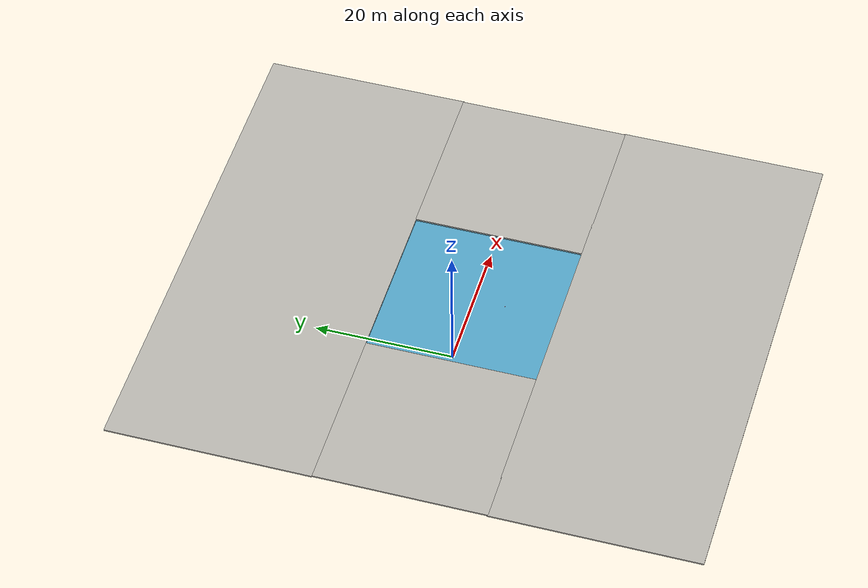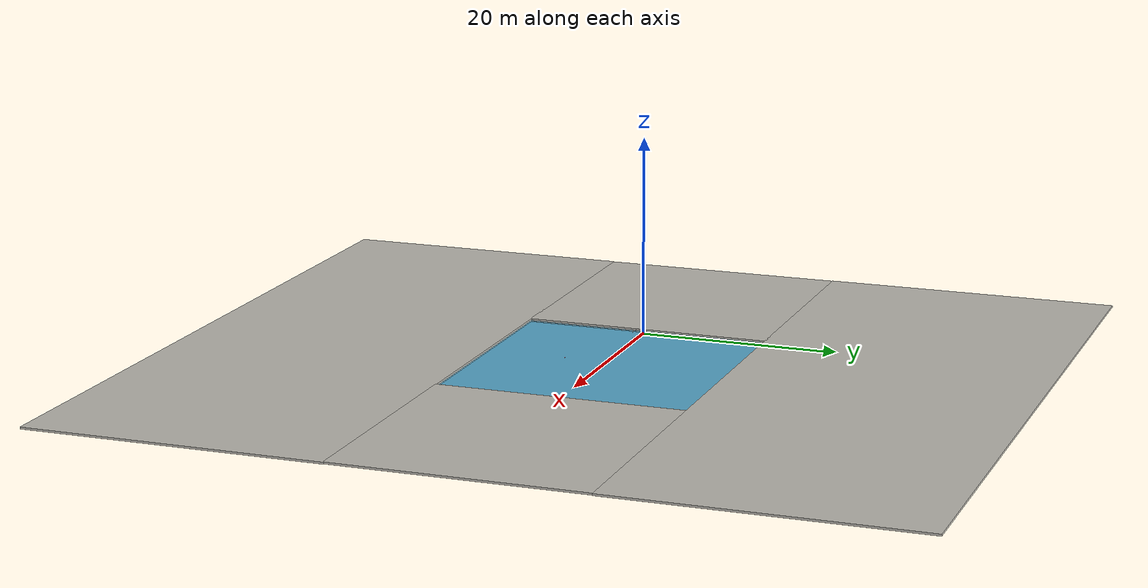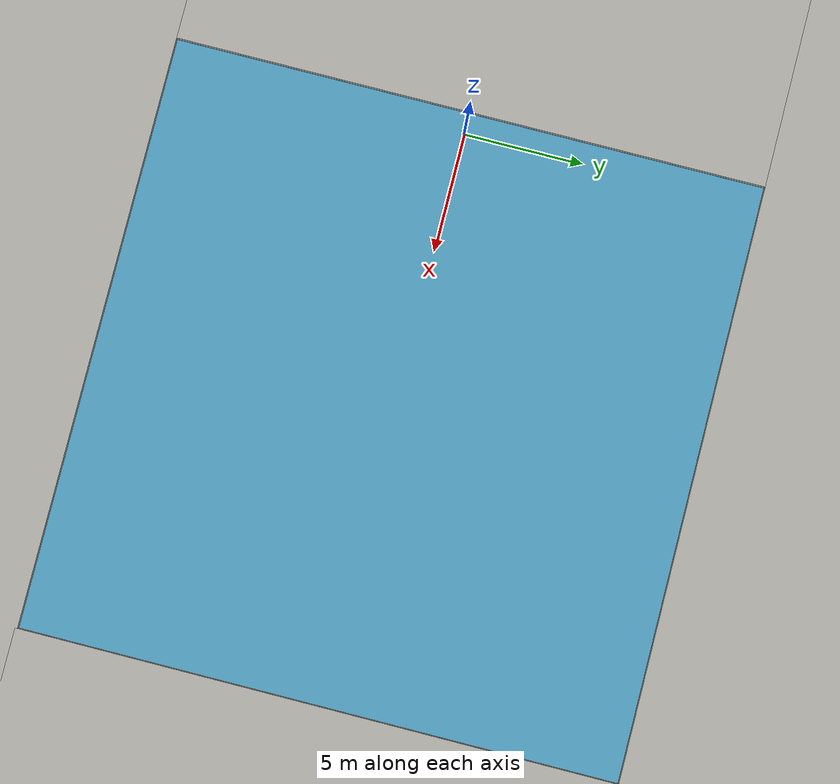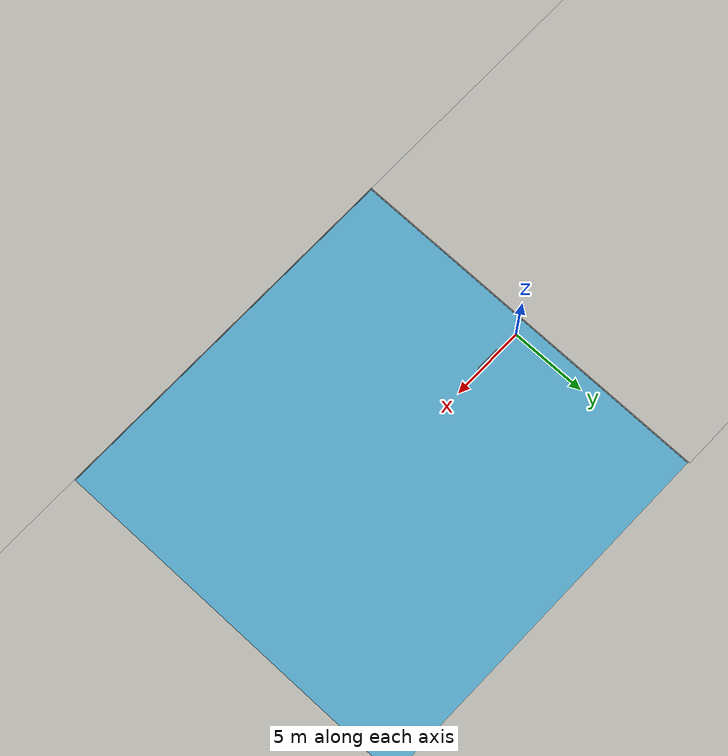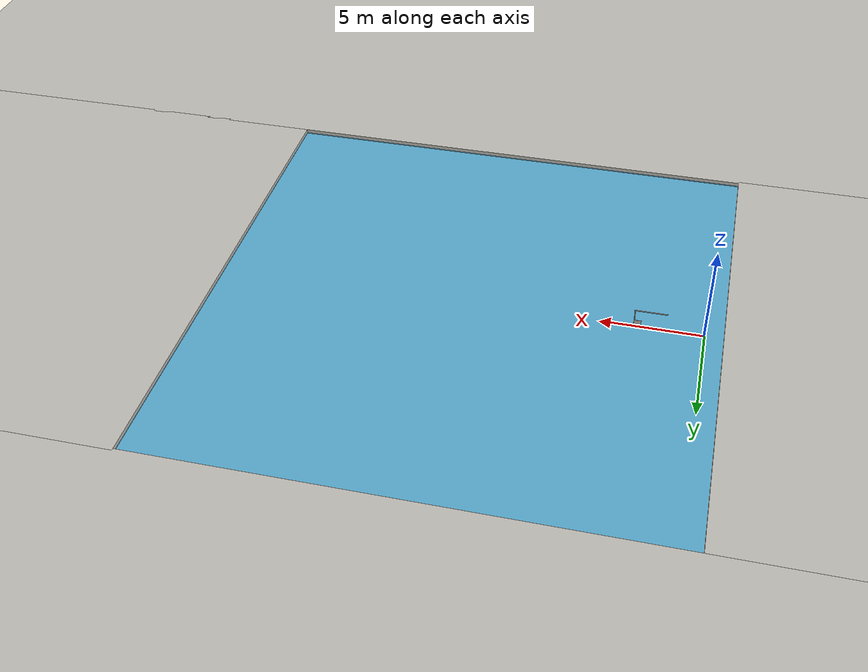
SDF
<sdf version="1.8">
 <world name="underwater_pool">
  <physics name="2ms" type="ode">
   <max_step_size>0.002</max_step_size>
   <real_time_factor>1.0</real_time_factor>
   <ode>
    <solver><type>quick</type><iters>20</iters><sor>1.3</sor></solver>
    <constraints>
     <cfm>0.0</cfm>
     <erp>0.2</erp>
     <contact_max_correcting_vel>0.1</contact_max_correcting_vel>
     <contact_surface_layer>0.001</contact_surface_layer>
    </constraints>
   </ode>
  </physics>
  <plugin filename="ignition-gazebo-physics-system" name="ignition::gazebo::systems::Physics"/>
  <plugin filename="ignition-gazebo-user-commands-system" name="ignition::gazebo::systems::UserCommands"/>
  <plugin filename="ignition-gazebo-scene-broadcaster-system" name="ignition::gazebo::systems::SceneBroadcaster"/>
  <plugin filename="ignition-gazebo-contact-system" name="ignition::gazebo::systems::Contact"/>
  <plugin filename="ignition-gazebo-apply-link-wrench-system" name="ignition::gazebo::systems::ApplyLinkWrench"/>
  <plugin filename="ignition-gazebo-buoyancy-system" name="ignition::gazebo::systems::Buoyancy">
   <graded_buoyancy>
    <default_density>1025</default_density>
    <density_change><above_depth>0</above_depth><density>1.2</density></density_change>
   </graded_buoyancy>
  </plugin>
  <plugin filename="ignition-gazebo-imu-system" name="ignition::gazebo::systems::Imu"/>
  <plugin filename="ignition-gazebo-sensors-system" name="ignition::gazebo::systems::Sensors">
   <render_engine>ogre2</render_engine>
  </plugin>
  <gravity>0 0 -9.81</gravity>
  <scene>
   <ambient>0.18 0.38 0.46 1.0</ambient>
   <background>0.02 0.18 0.28 1.0</background>
   <shadows>true</shadows>
   <grid>false</grid>
   <fog>
    <type>exp2</type>
    <color>0.03 0.30 0.38 1</color>
    <density>0.085</density>
    <start>0.6</start>
    <end>18.0</end>
   </fog>
  </scene>
  <light type="directional" name="sun_through_water">
   <cast_shadows>false</cast_shadows>
   <pose>0 0 5 0 0 0</pose>
   <direction>-0.3 0.1 -0.95</direction>
   <diffuse>0.68 0.86 0.94 1</diffuse>
   <specular>0.55 0.72 0.78 1</specular>
   <attenuation>
    <range>1000</range>
    <constant>0.9</constant>
    <linear>0.01</linear>
    <quadratic>0.001</quadratic>
   </attenuation>
  </light>
  <light type="point" name="water_column_scatter">
   <pose>11.5 0 -2.0 0 0 0</pose>
   <diffuse>0.22 0.48 0.62 1</diffuse>
   <specular>0.10 0.22 0.30 1</specular>
   <attenuation>
    <range>50</range>
    <constant>0.5</constant>
    <linear>0.03</linear>
    <quadratic>0.002</quadratic>
   </attenuation>
   <cast_shadows>false</cast_shadows>
  </light>
  <light type="spot" name="caustic_spot_1">
   <pose>3.0 4.0 0.05 0 3.14159 0</pose>
   <diffuse>0.30 0.48 0.55 1</diffuse>
   <specular>0.08 0.14 0.16 1</specular>
   <attenuation>
    <range>14</range>
    <constant>0.2</constant>
    <linear>0.05</linear>
    <quadratic>0.005</quadratic>
   </attenuation>
   <spot><inner_angle>0.08</inner_angle><outer_angle>0.30</outer_angle><falloff>2.5</falloff></spot>
   <cast_shadows>false</cast_shadows>
   <visualize>false</visualize>
  </light>
  <light type="spot" name="caustic_spot_2">
   <pose>3.0 -4.0 0.05 0 3.14159 0</pose>
   <diffuse>0.28 0.44 0.52 1</diffuse>
   <specular>0.07 0.12 0.14 1</specular>
   <attenuation>
    <range>12</range>
    <constant>0.2</constant>
    <linear>0.06</linear>
    <quadratic>0.006</quadratic>
   </attenuation>
   <spot><inner_angle>0.09</inner_angle><outer_angle>0.28</outer_angle><falloff>2.2</falloff></spot>
   <cast_shadows>false</cast_shadows>
   <visualize>false</visualize>
  </light>
  <light type="spot" name="caustic_spot_3">
   <pose>10.5 7.0 0.05 0 3.14159 0</pose>
   <diffuse>0.32 0.50 0.58 1</diffuse>
   <specular>0.09 0.15 0.17 1</specular>
   <attenuation>
    <range>16</range>
    <constant>0.2</constant>
    <linear>0.04</linear>
    <quadratic>0.004</quadratic>
   </attenuation>
   <spot><inner_angle>0.07</inner_angle><outer_angle>0.25</outer_angle><falloff>3.0</falloff></spot>
   <cast_shadows>false</cast_shadows>
   <visualize>false</visualize>
  </light>
  <light type="spot" name="caustic_spot_4">
   <pose>10.5 -7.0 0.05 0 3.14159 0</pose>
   <diffuse>0.26 0.42 0.50 1</diffuse>
   <specular>0.06 0.11 0.13 1</specular>
   <attenuation>
    <range>11</range>
    <constant>0.2</constant>
    <linear>0.06</linear>
    <quadratic>0.006</quadratic>
   </attenuation>
   <spot><inner_angle>0.10</inner_angle><outer_angle>0.32</outer_angle><falloff>2.0</falloff></spot>
   <cast_shadows>false</cast_shadows>
   <visualize>false</visualize>
  </light>
  <light type="spot" name="caustic_spot_5">
   <pose>19.0 5.0 0.05 0 3.14159 0</pose>
   <diffuse>0.29 0.46 0.54 1</diffuse>
   <specular>0.07 0.13 0.15 1</specular>
   <attenuation>
    <range>13</range>
    <constant>0.2</constant>
    <linear>0.05</linear>
    <quadratic>0.005</quadratic>
   </attenuation>
   <spot><inner_angle>0.08</inner_angle><outer_angle>0.26</outer_angle><falloff>2.8</falloff></spot>
   <cast_shadows>false</cast_shadows>
   <visualize>false</visualize>
  </light>
  <light type="spot" name="caustic_spot_6">
   <pose>19.0 -5.0 0.05 0 3.14159 0</pose>
   <diffuse>0.31 0.49 0.57 1</diffuse>
   <specular>0.08 0.14 0.16 1</specular>
   <attenuation>
    <range>12</range>
    <constant>0.2</constant>
    <linear>0.06</linear>
    <quadratic>0.006</quadratic>
   </attenuation>
   <spot><inner_angle>0.09</inner_angle><outer_angle>0.29</outer_angle><falloff>2.4</falloff></spot>
   <cast_shadows>false</cast_shadows>
   <visualize>false</visualize>
  </light>
  <model name="pool_floor">
   <static>true</static>
   <pose>11.5 0 -3.05 0 0 0</pose>
   <link name="floor">
    <collision name="collision">
     <geometry><box><size>25 25 0.1</size></box></geometry>
     <surface>
      <contact><ode><kp>500000</kp><kd>200</kd><max_vel>0.5</max_vel><min_depth>0.001</min_depth></ode></contact>
      <friction><ode><mu>0.1</mu><mu2>0.1</mu2></ode></friction>
     </surface>
    </collision>
    <visual name="visual">
     <geometry><box><size>25 25 0.1</size></box></geometry>
     <material>
      <ambient>0.55 0.78 0.88 1</ambient>
      <diffuse>0.62 0.84 0.92 1</diffuse>
      <specular>0.30 0.38 0.42 1</specular>
      <pbr>
       <metal>
        <albedo_map>../media/textures/pool_tile_skyblue_tiled.png</albedo_map>
        <normal_map>../media/textures/pool_tile_normal_tiled.png</normal_map>
        <roughness>0.15</roughness>
        <metalness>0.0</metalness>
       </metal>
      </pbr>
     </material>
    </visual>
   </link>
  </model>
  <model name="pool_wall_north">
   <static>true</static>
   <pose>11.5 12.5 -1.5 0 0 0</pose>
   <link name="wall">
    <collision name="collision">
     <geometry><box><size>25 0.2 3</size></box></geometry>
     <surface>
      <contact><ode><kp>500000</kp><kd>200</kd><max_vel>0.5</max_vel><min_depth>0.001</min_depth></ode></contact>
      <friction><ode><mu>0.1</mu><mu2>0.1</mu2></ode></friction>
     </surface>
    </collision>
    <visual name="visual">
     <geometry><box><size>25 0.2 3</size></box></geometry>
     <material>
      <ambient>0.55 0.78 0.88 1</ambient>
      <diffuse>0.62 0.84 0.92 1</diffuse>
      <specular>0.28 0.36 0.40 1</specular>
      <pbr>
       <metal>
        <albedo_map>../media/textures/pool_tile_skyblue_wall_tiled.png</albedo_map>
        <normal_map>../media/textures/pool_tile_normal_tiled.png</normal_map>
        <roughness>0.20</roughness>
        <metalness>0.0</metalness>
       </metal>
      </pbr>
     </material>
    </visual>
   </link>
  </model>
  <model name="pool_wall_south">
   <static>true</static>
   <pose>11.5 -12.5 -1.5 0 0 0</pose>
   <link name="wall">
    <collision name="collision">
     <geometry><box><size>25 0.2 3</size></box></geometry>
     <surface>
      <contact><ode><kp>500000</kp><kd>200</kd><max_vel>0.5</max_vel><min_depth>0.001</min_depth></ode></contact>
      <friction><ode><mu>0.1</mu><mu2>0.1</mu2></ode></friction>
     </surface>
    </collision>
    <visual name="visual">
     <geometry><box><size>25 0.2 3</size></box></geometry>
     <material>
      <ambient>0.55 0.78 0.88 1</ambient>
      <diffuse>0.62 0.84 0.92 1</diffuse>
      <specular>0.28 0.36 0.40 1</specular>
      <pbr>
       <metal>
        <albedo_map>../media/textures/pool_tile_skyblue_wall_tiled.png</albedo_map>
        <normal_map>../media/textures/pool_tile_normal_tiled.png</normal_map>
        <roughness>0.20</roughness>
        <metalness>0.0</metalness>
       </metal>
      </pbr>
     </material>
    </visual>
   </link>
  </model>
  <model name="pool_wall_west">
   <static>true</static>
   <pose>-1 0 -1.5 0 0 0</pose>
   <link name="wall">
    <collision name="collision">
     <geometry><box><size>0.2 25 3</size></box></geometry>
     <surface>
      <contact><ode><kp>500000</kp><kd>200</kd><max_vel>0.5</max_vel><min_depth>0.001</min_depth></ode></contact>
      <friction><ode><mu>0.1</mu><mu2>0.1</mu2></ode></friction>
     </surface>
    </collision>
    <visual name="visual">
     <geometry><box><size>0.2 25 3</size></box></geometry>
     <material>
      <ambient>0.55 0.78 0.88 1</ambient>
      <diffuse>0.62 0.84 0.92 1</diffuse>
      <specular>0.28 0.36 0.40 1</specular>
      <pbr>
       <metal>
        <albedo_map>../media/textures/pool_tile_skyblue_wall_tiled.png</albedo_map>
        <normal_map>../media/textures/pool_tile_normal_tiled.png</normal_map>
        <roughness>0.20</roughness>
        <metalness>0.0</metalness>
       </metal>
      </pbr>
     </material>
    </visual>
   </link>
  </model>
  <model name="pool_wall_east">
   <static>true</static>
   <pose>24 0 -1.5 0 0 0</pose>
   <link name="wall">
    <collision name="collision">
     <geometry><box><size>0.2 25 3</size></box></geometry>
     <surface>
      <contact><ode><kp>500000</kp><kd>200</kd><max_vel>0.5</max_vel><min_depth>0.001</min_depth></ode></contact>
      <friction><ode><mu>0.1</mu><mu2>0.1</mu2></ode></friction>
     </surface>
    </collision>
    <visual name="visual">
     <geometry><box><size>0.2 25 3</size></box></geometry>
     <material>
      <ambient>0.55 0.78 0.88 1</ambient>
      <diffuse>0.62 0.84 0.92 1</diffuse>
      <specular>0.28 0.36 0.40 1</specular>
      <pbr>
       <metal>
        <albedo_map>../media/textures/pool_tile_skyblue_wall_tiled.png</albedo_map>
        <normal_map>../media/textures/pool_tile_normal_tiled.png</normal_map>
        <roughness>0.20</roughness>
        <metalness>0.0</metalness>
       </metal>
      </pbr>
     </material>
    </visual>
   </link>
  </model>
  <model name="pool_deck_north">
   <static>true</static>
   <pose>11.5 27.4 0.1 0 0 0</pose>
   <link name="deck">
    <visual name="visual">
     <geometry><box><size>75 30 0.2</size></box></geometry>
     <material>
      <ambient>0.72 0.71 0.68 1</ambient>
      <diffuse>0.76 0.75 0.72 1</diffuse>
      <specular>0.06 0.06 0.05 1</specular>
     </material>
    </visual>
   </link>
  </model>
  <model name="pool_deck_south">
   <static>true</static>
   <pose>11.5 -27.4 0.1 0 0 0</pose>
   <link name="deck">
    <visual name="visual">
     <geometry><box><size>75 30 0.2</size></box></geometry>
     <material>
      <ambient>0.72 0.71 0.68 1</ambient>
      <diffuse>0.76 0.75 0.72 1</diffuse>
      <specular>0.06 0.06 0.05 1</specular>
     </material>
    </visual>
   </link>
  </model>
  <model name="pool_deck_west">
   <static>true</static>
   <pose>-13.4 0 0.1 0 0 0</pose>
   <link name="deck">
    <visual name="visual">
     <geometry><box><size>25 25 0.2</size></box></geometry>
     <material>
      <ambient>0.72 0.71 0.68 1</ambient>
      <diffuse>0.76 0.75 0.72 1</diffuse>
      <specular>0.06 0.06 0.05 1</specular>
     </material>
    </visual>
   </link>
  </model>
  <model name="pool_deck_east">
   <static>true</static>
   <pose>36.4 0 0.1 0 0 0</pose>
   <link name="deck">
    <visual name="visual">
     <geometry><box><size>25 25 0.2</size></box></geometry>
     <material>
      <ambient>0.72 0.71 0.68 1</ambient>
      <diffuse>0.76 0.75 0.72 1</diffuse>
      <specular>0.06 0.06 0.05 1</specular>
     </material>
    </visual>
   </link>
  </model>
  <model name="water_surface">
   <static>true</static>
   <pose>11.5 0 0.3 0 0 0</pose>
   <link name="surface">
    <collision name="collision">
     <geometry><box><size>25 25 0.1</size></box></geometry>
     <surface>
      <contact><ode><kp>500000</kp><kd>200</kd><max_vel>0.1</max_vel><min_depth>0.001</min_depth></ode></contact>
      <friction><ode><mu>0.0</mu><mu2>0.0</mu2></ode></friction>
     </surface>
    </collision>
   </link>
  </model>
  <model name="water_surface_texture">
   <static>true</static>
   <pose>11.5 0 0 0 0 0</pose>
   <link name="surface">
    <visual name="visual">
     <cast_shadows>false</cast_shadows>
     <transparency>0.30</transparency>
     <geometry><plane><normal>0 0 1</normal><size>24.8 24.8</size></plane></geometry>
     <material>
      <ambient>0.30 0.62 0.78 0.70</ambient>
      <diffuse>0.35 0.68 0.82 0.70</diffuse>
      <specular>0.90 0.92 0.95 0.70</specular>
      <pbr>
       <metal>
        <albedo_map>../media/textures/water_water_0051_01.jpg</albedo_map>
        <normal_map>../media/textures/water_normal.png</normal_map>
        <roughness>0.08</roughness>
        <metalness>0.02</metalness>
       </metal>
      </pbr>
     </material>
    </visual>
   </link>
  </model>
  <include>
   <uri>model://rs2026_gate</uri>
   <name>task1_gate</name>
   <pose>3.0 0.0 -0.8 1.5708 0 1.5708</pose>
  </include>
  <include><uri>model://slalom_red</uri><name>slalom_red_r1</name><pose>9.5 -4.5 -1.0 0 0 0</pose></include>
  <include><uri>model://slalom_red</uri><name>slalom_red_r2</name><pose>10.4 -4.5 -1.0 0 0 0</pose></include>
  <include><uri>model://slalom_red</uri><name>slalom_red_r3</name><pose>11.3 -4.5 -1.0 0 0 0</pose></include>
  <include>
   <uri>model://rs2026_bin_urdf</uri>
   <name>task3_bins</name>
   <pose>17.0 -5.0 -3.893 0 0 0</pose>
  </include>
  <include>
   <uri>model://rs2026_torpedo</uri>
   <name>task4_torpedo</name>
   <pose>16.0 5.0 -2.4501 0 0 0</pose>
  </include>
 </world>
</sdf>

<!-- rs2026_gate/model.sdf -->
<sdf version='1.9'>
  <model name='rs2026_gate'>
    <static>true</static>
    <link name='base_link'>
      <inertial>
        <pose>8.6159e-05 2.2529e-06 -0.26534 0 0 0</pose>
        <mass>15.543</mass>
        <inertia>
          <ixx>3.2566</ixx>
          <ixy>-1.1467e-05</ixy>
          <ixz>-0.00030835</ixz>
          <iyy>23.727</iyy>
          <iyz>2.6926e-06</iyz>
          <izz>20.475</izz>
        </inertia>
      </inertial>
      <collision name='base_link_collision'>
        <pose>0 0 0 0 0 0</pose>
        <geometry>
          <mesh>
            <scale>1 1 1</scale>
            <uri>model://rs2026_gate/meshes/base_link.dae</uri>
          </mesh>
        </geometry>
      </collision>
      <visual name='base_link_visual'>
        <pose>0 0 0 0 0 0</pose>
        <geometry>
          <mesh>
            <scale>1 1 1</scale>
            <uri>model://rs2026_gate/meshes/base_link.dae</uri>
          </mesh>
        </geometry>
      </visual>

      <sensor name='gate_contact_sensor' type='contact'>
        <update_rate>30.0</update_rate>
        <always_on>true</always_on>
        <contact>
          <collision>base_link_collision</collision>
        </contact>
      </sensor>

    </link>
  </model>
</sdf>

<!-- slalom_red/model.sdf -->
<sdf version='1.9'>
  <model name='slalom_red'>
    <static>true</static>
    <link name='base_link'>
      <inertial>
        <pose>-4.6434e-19 0.45 -4.9507e-19 0 0 0</pose>
        <mass>1.8241</mass>
        <inertia>
          <ixx>0.12342</ixx>
          <ixy>2.5172e-35</ixy>
          <ixz>4.1934e-37</ixz>
          <iyy>0.00058843</iyy>
          <iyz>-1.0778e-35</iyz>
          <izz>0.12342</izz>
        </inertia>
      </inertial>
      <collision name='base_link_collision'>
        <pose>0 0 0 0 0 0</pose>
        <geometry>
          <mesh>
            <scale>1 1 1</scale>
            <uri>model://slalom_red/meshes/base_link.STL</uri>
          </mesh>
        </geometry>
      </collision>
      <visual name='base_link_visual'>
        <pose>0 0 0 0 0 0</pose>
        <geometry>
          <mesh>
            <scale>1 1 1</scale>
            <uri>model://slalom_red/meshes/base_link.STL</uri>
          </mesh>
        </geometry>
        <material>
          <diffuse>1 0 0 1</diffuse>
          <ambient>1 0 0 1</ambient>
        </material>
      </visual>
    </link>
  </model>
</sdf>

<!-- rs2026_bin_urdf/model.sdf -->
<sdf version='1.9'>
  <model name='rs2026_bin_urdf'>
    <static>true</static>
    <link name='base_link'>
      <inertial>
        <pose>1.0204 1.2699 0.28257 0 0 0</pose>
        <mass>11.751</mass>
        <inertia>
          <ixx>0.057018</ixx>
          <ixy>1.9787e-10</ixy>
          <ixz>-7.0658e-10</ixz>
          <iyy>0.060393</iyy>
          <iyz>0.0014998</iyz>
          <izz>0.096926</izz>
        </inertia>
      </inertial>
      <collision name='base_link_collision'>
        <pose>0 0 0 0 0 0</pose>
        <geometry>
          <mesh>
            <scale>1 1 1</scale>
            <uri>model://rs2026_bin_urdf/meshes/base_link.STL</uri>
          </mesh>
        </geometry>
      </collision>
      <visual name='base_link_visual'>
        <pose>0 0 0 0 0 0</pose>
        <geometry>
          <mesh>
            <scale>1 1 1</scale>
            <uri>model://rs2026_bin_urdf/meshes/base_link.STL</uri>
          </mesh>
        </geometry>
        <material>
          <diffuse>1 1 1 1</diffuse>
          <ambient>1 1 1 1</ambient>
        </material>
      </visual>
    </link>

    <joint name='box_1_joint' type='prismatic'>
      <pose relative_to='base_link'>0.81131 -0.64469 1.2801 1.5708 0 0</pose>
      <parent>base_link</parent>
      <child>box_1</child>
      <axis>
        <xyz>0 0 1</xyz>
        <limit>
          <lower>0</lower>
          <upper>0</upper>
          <effort>0</effort>
          <velocity>0</velocity>
        </limit>
        <dynamics>
          <spring_reference>0</spring_reference>
          <spring_stiffness>0</spring_stiffness>
        </dynamics>
      </axis>
    </joint>
    <link name='box_1'>
      <pose relative_to='box_1_joint'>0 0 0 0 0 0</pose>
      <inertial>
        <pose>1.1102e-16 0.071012 0.175 0 0 0</pose>
        <mass>5.327</mass>
        <inertia>
          <ixx>0.12994</ixx>
          <ixy>-7.0907e-17</ixy>
          <ixz>-1.6488e-17</ixz>
          <iyy>0.16257</iyy>
          <iyz>1.5356e-17</iyz>
          <izz>0.12994</izz>
        </inertia>
      </inertial>
      <collision name='box_1_collision'>
        <pose>0 0 0 0 0 0</pose>
        <geometry>
          <mesh>
            <scale>1 1 1</scale>
            <uri>model://rs2026_bin_urdf/meshes/box_1.STL</uri>
          </mesh>
        </geometry>
      </collision>
      <visual name='box_1_visual'>
        <pose>0 0 0 0 0 0</pose>
        <geometry>
          <mesh>
            <scale>1 1 1</scale>
            <uri>model://rs2026_bin_urdf/meshes/box_1.dae</uri>
          </mesh>
        </geometry>
      </visual>

      <!-- Scoring: markers landing in this bin. -->
      <sensor name='box_1_contact_sensor' type='contact'>
        <update_rate>30.0</update_rate>
        <always_on>true</always_on>
        <contact>
          <collision>box_1_collision</collision>
        </contact>
      </sensor>
    </link>

    <joint name='box_2_joint' type='prismatic'>
      <pose relative_to='base_link'>1.5566 -0.38765 1.3134 1.5708 0 0</pose>
      <parent>base_link</parent>
      <child>box_2</child>
      <axis>
        <xyz>0 0 1</xyz>
        <limit>
          <lower>0</lower>
          <upper>0</upper>
          <effort>0</effort>
          <velocity>0</velocity>
        </limit>
        <dynamics>
          <spring_reference>0</spring_reference>
          <spring_stiffness>0</spring_stiffness>
        </dynamics>
      </axis>
    </joint>
    <link name='box_2'>
      <pose relative_to='box_2_joint'>0 0 0 0 0 0</pose>
      <inertial>
        <pose>0 0.071012 0.175 0 0 0</pose>
        <mass>5.327</mass>
        <inertia>
          <ixx>0.12994</ixx>
          <ixy>-1.3072e-17</ixy>
          <ixz>2.5931e-17</ixz>
          <iyy>0.16257</iyy>
          <iyz>7.8168e-17</iyz>
          <izz>0.12994</izz>
        </inertia>
      </inertial>
      <collision name='box_2_collision'>
        <pose>0 0 0 0 0 0</pose>
        <geometry>
          <mesh>
            <scale>1 1 1</scale>
            <uri>model://rs2026_bin_urdf/meshes/box_2.STL</uri>
          </mesh>
        </geometry>
      </collision>
      <visual name='box_2_visual'>
        <pose>0 0 0 0 0 0</pose>
        <geometry>
          <mesh>
            <scale>1 1 1</scale>
            <uri>model://rs2026_bin_urdf/meshes/box_2.dae</uri>
          </mesh>
        </geometry>
      </visual>

      <!-- Scoring: markers landing in this bin. -->
      <sensor name='box_2_contact_sensor' type='contact'>
        <update_rate>30.0</update_rate>
        <always_on>true</always_on>
        <contact>
          <collision>box_2_collision</collision>
        </contact>
      </sensor>
    </link>

    <joint name='box_3_joint' type='prismatic'>
      <pose relative_to='base_link'>0.48431 0 1.4793 1.5708 0 0</pose>
      <parent>base_link</parent>
      <child>box_3</child>
      <axis>
        <xyz>0 0 1</xyz>
        <limit>
          <lower>0</lower>
          <upper>0</upper>
          <effort>0</effort>
          <velocity>0</velocity>
        </limit>
        <dynamics>
          <spring_reference>0</spring_reference>
          <spring_stiffness>0</spring_stiffness>
        </dynamics>
      </axis>
    </joint>
    <link name='box_3'>
      <pose relative_to='box_3_joint'>0 0 0 0 0 0</pose>
      <inertial>
        <pose>-1.6653e-16 0.071012 0.065224 0 0 0</pose>
        <mass>5.327</mass>
        <inertia>
          <ixx>0.12994</ixx>
          <ixy>6.8046e-17</ixy>
          <ixz>-2.0031e-17</ixz>
          <iyy>0.16257</iyy>
          <iyz>-1.7974e-17</iyz>
          <izz>0.12994</izz>
        </inertia>
      </inertial>
      <collision name='box_3_collision'>
        <pose>0 0 0 0 0 0</pose>
        <geometry>
          <mesh>
            <scale>1 1 1</scale>
            <uri>model://rs2026_bin_urdf/meshes/box_3.STL</uri>
          </mesh>
        </geometry>
      </collision>
      <visual name='box_3_visual'>
        <pose>0 0 -0.109776 0 0 0</pose>
        <geometry>
          <mesh>
            <scale>1 1 1</scale>
            <uri>model://rs2026_bin_urdf/meshes/box_2.dae</uri>
          </mesh>
        </geometry>

      </visual>

      <!-- Scoring: markers landing in this bin. -->
      <sensor name='box_3_contact_sensor' type='contact'>
        <update_rate>30.0</update_rate>
        <always_on>true</always_on>
        <contact>
          <collision>box_3_collision</collision>
        </contact>
      </sensor>
    </link>

    <joint name='box_4_joint' type='prismatic'>
      <pose relative_to='base_link'>1.2296 0 1.612 1.5708 0 0</pose>
      <parent>base_link</parent>
      <child>box_4</child>
      <axis>
        <xyz>0 0 1</xyz>
        <limit>
          <lower>0</lower>
          <upper>0</upper>
          <effort>0</effort>
          <velocity>0</velocity>
        </limit>
        <dynamics>
          <spring_reference>0</spring_reference>
          <spring_stiffness>0</spring_stiffness>
        </dynamics>
      </axis>
    </joint>
    <link name='box_4'>
      <pose relative_to='box_4_joint'>0 0 0 0 0 0</pose>
      <inertial>
        <pose>0 0.071012 -0.15148 0 0 0</pose>
        <mass>5.327</mass>
        <inertia>
          <ixx>0.12994</ixx>
          <ixy>-3.3796e-17</ixy>
          <ixz>8.2973e-17</ixz>
          <iyy>0.16257</iyy>
          <iyz>4.1683e-17</iyz>
          <izz>0.12994</izz>
        </inertia>
      </inertial>
      <collision name='box_4_collision'>
        <pose>0 0 0 0 0 0</pose>
        <geometry>
          <mesh>
            <scale>1 1 1</scale>
            <uri>model://rs2026_bin_urdf/meshes/box_4.STL</uri>
          </mesh>
        </geometry>
      </collision>
      <visual name='box_4_visual'>
        <pose>0 0 -0.326476 0 0 0</pose>
        <geometry>
          <mesh>
            <scale>1 1 1</scale>
            <uri>model://rs2026_bin_urdf/meshes/box_1.dae</uri>
          </mesh>
        </geometry>
      </visual>

      <!-- Scoring: markers landing in this bin. -->
      <sensor name='box_4_contact_sensor' type='contact'>
        <update_rate>30.0</update_rate>
        <always_on>true</always_on>
        <contact>
          <collision>box_4_collision</collision>
        </contact>
      </sensor>
    </link>

    <!-- continuous joint converted to revolute with no effective limits -->
    <joint name='greenbar_1_joint' type='revolute'>
      <pose relative_to='base_link'>1.2157 -1.0792 1.1928 -1.5707926535764 -1.5707926536058 3.1415926535898</pose>
      <parent>base_link</parent>
      <child>greenbar_1</child>
      <axis>
        <xyz>0 1 0</xyz>
        <limit>
          <lower>-1e16</lower>
          <upper>1e16</upper>
        </limit>
        <dynamics>
          <spring_reference>0</spring_reference>
          <spring_stiffness>0</spring_stiffness>
        </dynamics>
      </axis>
    </joint>
    <link name='greenbar_1'>
      <pose relative_to='greenbar_1_joint'>0 0 0 0 0 0</pose>
      <inertial>
        <pose>0 -0.225 0 0 0 0</pose>
        <mass>0.59523</mass>
        <inertia>
          <ixx>0.010255</ixx>
          <ixy>1.3235e-20</ixy>
          <ixz>-1.4334e-36</ixz>
          <iyy>0.00042171</iyy>
          <iyz>6.3473e-35</iyz>
          <izz>0.010255</izz>
        </inertia>
      </inertial>
      <collision name='greenbar_1_collision'>
        <pose>0 0 0 0 0 0</pose>
        <geometry>
          <mesh>
            <scale>1 1 1</scale>
            <uri>model://rs2026_bin_urdf/meshes/greenbar_1.STL</uri>
          </mesh>
        </geometry>
      </collision>
      <visual name='greenbar_1_visual'>
        <pose>0 0 0 0 0 0</pose>
        <geometry>
          <mesh>
            <scale>1 1 1</scale>
            <uri>model://rs2026_bin_urdf/meshes/greenbar_1.STL</uri>
          </mesh>
        </geometry>
        <material>
          <diffuse>0.24 0.87 0.62 1</diffuse>
          <ambient>0.24 0.87 0.62 1</ambient>
        </material>
      </visual>
    </link>

    <!-- greenbar_2 had zero mass in URDF; assigned minimal mass to make SDF valid -->
    <joint name='greenbar_2_joint' type='revolute'>
      <pose relative_to='base_link'>0.37519 0.38798 1.6905 1.5708 1.5708 0</pose>
      <parent>base_link</parent>
      <child>greenbar_2</child>
      <axis>
        <xyz>0 1 0</xyz>
        <limit>
          <lower>-1e16</lower>
          <upper>1e16</upper>
        </limit>
        <dynamics>
          <spring_reference>0</spring_reference>
          <spring_stiffness>0</spring_stiffness>
        </dynamics>
      </axis>
    </joint>
    <link name='greenbar_2'>
      <pose relative_to='greenbar_2_joint'>0 0 0 0 0 0</pose>
      <inertial>
        <pose>0 0 0 0 0 0</pose>
        <mass>0.001</mass>
        <inertia>
          <ixx>1e-6</ixx>
          <ixy>0</ixy>
          <ixz>0</ixz>
          <iyy>1e-6</iyy>
          <iyz>0</iyz>
          <izz>1e-6</izz>
        </inertia>
      </inertial>
      <collision name='greenbar_2_collision'>
        <pose>0 0 0 0 0 0</pose>
        <geometry>
          <mesh>
            <scale>1 1 1</scale>
            <uri>model://rs2026_bin_urdf/meshes/greenbar_2.STL</uri>
          </mesh>
        </geometry>
      </collision>
      <visual name='greenbar_2_visual'>
        <pose>0 0 0 0 0 0</pose>
        <geometry>
          <mesh>
            <scale>1 1 1</scale>
            <uri>model://rs2026_bin_urdf/meshes/greenbar_2.STL</uri>
          </mesh>
        </geometry>
        <material>
          <diffuse>0.24 0.87 0.62 1</diffuse>
          <ambient>0.24 0.87 0.62 1</ambient>
        </material>
      </visual>
    </link>

  </model>
</sdf>

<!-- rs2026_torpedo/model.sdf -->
<sdf version='1.9'>
  <model name='rs2026_torpedo'>
    <static>true</static>

    <link name='base_link'>
      <pose>-1.071211 -0.126489 1.696842 0 0 0</pose>

      <inertial>
        <pose>0.127055 1.073286 1.621449 0 0 1.5708</pose>
        <mass>11.6979</mass>
        <inertia>
          <ixx>0.159463</ixx>
          <ixy>-9.0771e-10</ixy>
          <ixz>0.006781</ixz>
          <iyy>0.347431</iyy>
          <iyz>4.0684e-20</iyz>
          <izz>0.201773</izz>
        </inertia>
      </inertial>

      <visual name='base_link_visual'>
        <pose>0 0 0 3.14159 0 1.5708</pose>
        <geometry>
          <mesh>
            <scale>1 1 1</scale>
            <uri>model://rs2026_torpedo/meshes/base_link.glb</uri>
          </mesh>
        </geometry>

      </visual>
    </link>

  </model>
</sdf>
